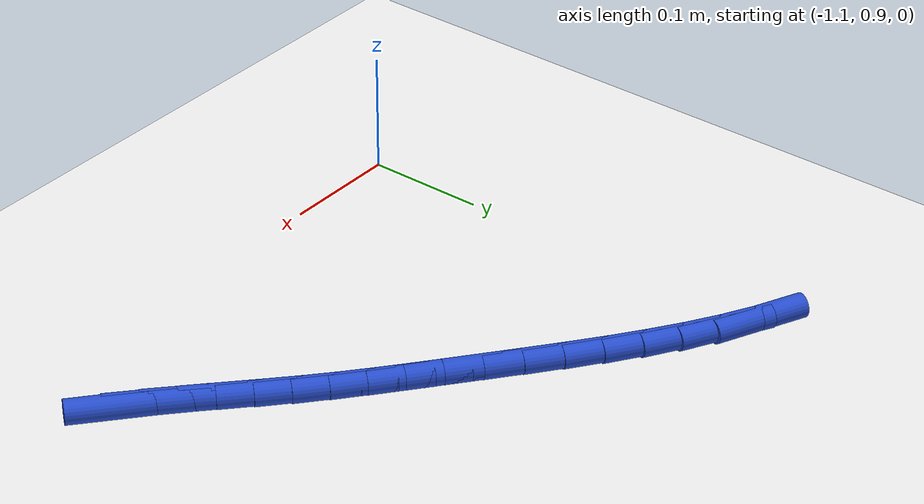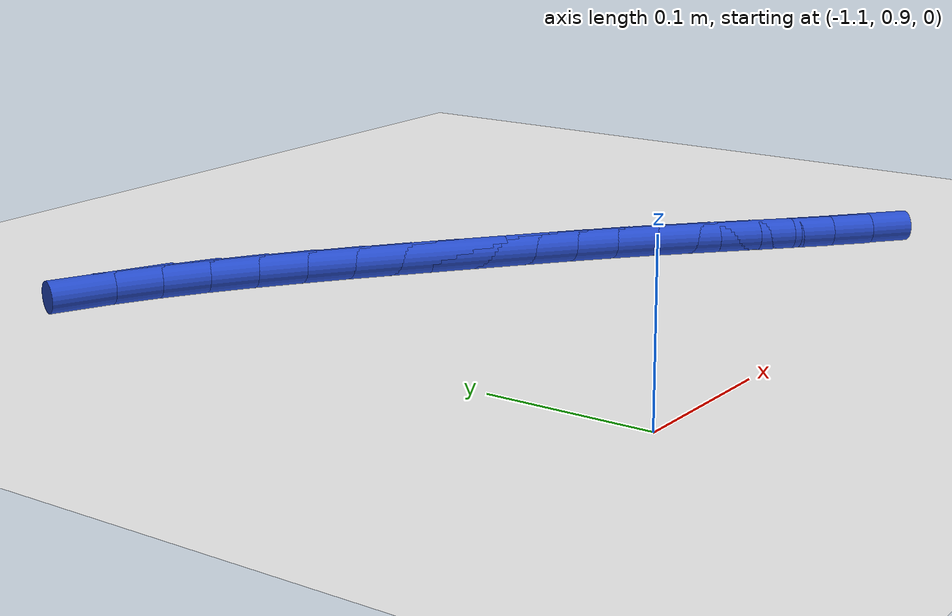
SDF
<sdf version="1.6">
 <world name="default">
  <model name="ground_plane">
   <static>1</static>
   <link name="link">
    <collision name="collision">
     <geometry><plane><normal>0 0 1</normal><size>100 100</size></plane></geometry>
     <surface><friction><ode><mu>100</mu><mu2>50</mu2></ode></friction></surface>
    </collision>
    <visual name="visual">
     <cast_shadows>0</cast_shadows>
     <geometry><plane><normal>0 0 1</normal><size>100 100</size></plane></geometry>
     <material>
      <script><uri>file://media/materials/scripts/gazebo.material</uri><name>Gazebo/WhiteGlow</name></script>
     </material>
    </visual>
   </link>
  </model>
  <model name="line">
   <link name="link_49">
    <pose>-0.7037777243364307 0.9789862609495829 0.01 0 1.57 -0.69913191488999</pose>
    <collision name="collision">
     <geometry><cylinder><radius>0.01</radius><length>0.08</length></cylinder></geometry>
    </collision>
    <visual name="visual">
     <material>
      <script><name>Gazebo/Blue</name><uri>file://media/materials/scripts/gazebo.material</uri></script>
     </material>
     <geometry><cylinder><radius>0.01</radius><length>0.08</length></cylinder></geometry>
    </visual>
   </link>
   <link name="link_50">
    <pose>-0.7253460279178282 0.997121009582012 0.01 0 1.57 -0.7305670219041283</pose>
    <collision name="collision">
     <geometry><cylinder><radius>0.01</radius><length>0.08</length></cylinder></geometry>
    </collision>
    <visual name="visual">
     <material>
      <script><name>Gazebo/Blue</name><uri>file://media/materials/scripts/gazebo.material</uri></script>
     </material>
     <geometry><cylinder><radius>0.01</radius><length>0.08</length></cylinder></geometry>
    </visual>
   </link>
   <link name="link_51">
    <pose>-0.7462241762732335 1.0158265607977124 0.01 0 1.57 -0.7481504263059927</pose>
    <collision name="collision">
     <geometry><cylinder><radius>0.01</radius><length>0.08</length></cylinder></geometry>
    </collision>
    <visual name="visual">
     <material>
      <script><name>Gazebo/Blue</name><uri>file://media/materials/scripts/gazebo.material</uri></script>
     </material>
     <geometry><cylinder><radius>0.01</radius><length>0.08</length></cylinder></geometry>
    </visual>
   </link>
   <link name="link_52">
    <pose>-0.7667028852411639 1.0348338260263228 0.01 0 1.57 -0.7516606794067981</pose>
    <collision name="collision">
     <geometry><cylinder><radius>0.01</radius><length>0.08</length></cylinder></geometry>
    </collision>
    <visual name="visual">
     <material>
      <script><name>Gazebo/Blue</name><uri>file://media/materials/scripts/gazebo.material</uri></script>
     </material>
     <geometry><cylinder><radius>0.01</radius><length>0.08</length></cylinder></geometry>
    </visual>
   </link>
   <link name="link_53">
    <pose>-0.7870728706601353 1.0538737166974819 0.01 0 1.57 -0.7409976301524455</pose>
    <collision name="collision">
     <geometry><cylinder><radius>0.01</radius><length>0.08</length></cylinder></geometry>
    </collision>
    <visual name="visual">
     <material>
      <script><name>Gazebo/Blue</name><uri>file://media/materials/scripts/gazebo.material</uri></script>
     </material>
     <geometry><cylinder><radius>0.01</radius><length>0.08</length></cylinder></geometry>
    </visual>
   </link>
   <link name="link_54">
    <pose>-0.8076248483686651 1.0726771442408285 0.01 0 1.57 -0.7172671707336774</pose>
    <collision name="collision">
     <geometry><cylinder><radius>0.01</radius><length>0.08</length></cylinder></geometry>
    </collision>
    <visual name="visual">
     <material>
      <script><name>Gazebo/Blue</name><uri>file://media/materials/scripts/gazebo.material</uri></script>
     </material>
     <geometry><cylinder><radius>0.01</radius><length>0.08</length></cylinder></geometry>
    </visual>
   </link>
   <link name="link_55">
    <pose>-0.8286344472180314 1.0910026491040457 0.01 0 1.57 -0.6928272018302386</pose>
    <collision name="collision">
     <geometry><cylinder><radius>0.01</radius><length>0.08</length></cylinder></geometry>
    </collision>
    <visual name="visual">
     <material>
      <script><name>Gazebo/Blue</name><uri>file://media/materials/scripts/gazebo.material</uri></script>
     </material>
     <geometry><cylinder><radius>0.01</radius><length>0.08</length></cylinder></geometry>
    </visual>
   </link>
   <link name="link_56">
    <pose>-0.8502109852501272 1.1089133391266282 0.01 0 1.57 -0.6755151028071706</pose>
    <collision name="collision">
     <geometry><cylinder><radius>0.01</radius><length>0.08</length></cylinder></geometry>
    </collision>
    <visual name="visual">
     <material>
      <script><name>Gazebo/Blue</name><uri>file://media/materials/scripts/gazebo.material</uri></script>
     </material>
     <geometry><cylinder><radius>0.01</radius><length>0.08</length></cylinder></geometry>
    </visual>
   </link>
   <link name="link_57">
    <pose>-0.8723606410530319 1.126661202922312 0.01 0 1.57 -0.6654956386654387</pose>
    <collision name="collision">
     <geometry><cylinder><radius>0.01</radius><length>0.08</length></cylinder></geometry>
    </collision>
    <visual name="visual">
     <material>
      <script><name>Gazebo/Blue</name><uri>file://media/materials/scripts/gazebo.material</uri></script>
     </material>
     <geometry><cylinder><radius>0.01</radius><length>0.08</length></cylinder></geometry>
    </visual>
   </link>
   <link name="link_58">
    <pose>-0.8950880517293283 1.1445010520495262 0.01 0 1.57 -0.662536947512708</pose>
    <collision name="collision">
     <geometry><cylinder><radius>0.01</radius><length>0.08</length></cylinder></geometry>
    </collision>
    <visual name="visual">
     <material>
      <script><name>Gazebo/Blue</name><uri>file://media/materials/scripts/gazebo.material</uri></script>
     </material>
     <geometry><cylinder><radius>0.01</radius><length>0.08</length></cylinder></geometry>
    </visual>
   </link>
   <link name="link_59">
    <pose>-0.9183977564601404 1.1626867706511839 0.01 0 1.57 -0.6619359870756996</pose>
    <collision name="collision">
     <geometry><cylinder><radius>0.01</radius><length>0.08</length></cylinder></geometry>
    </collision>
    <visual name="visual">
     <material>
      <script><name>Gazebo/Blue</name><uri>file://media/materials/scripts/gazebo.material</uri></script>
     </material>
     <geometry><cylinder><radius>0.01</radius><length>0.08</length></cylinder></geometry>
    </visual>
   </link>
   <link name="link_60">
    <pose>-0.9422753098212421 1.1812924394071784 0.01 0 1.57 -0.6542872192048848</pose>
    <collision name="collision">
     <geometry><cylinder><radius>0.01</radius><length>0.08</length></cylinder></geometry>
    </collision>
    <visual name="visual">
     <material>
      <script><name>Gazebo/Blue</name><uri>file://media/materials/scripts/gazebo.material</uri></script>
     </material>
     <geometry><cylinder><radius>0.01</radius><length>0.08</length></cylinder></geometry>
    </visual>
   </link>
   <link name="link_61">
    <pose>-0.9666647492893129 1.1999989299706912 0.01 0 1.57 -0.6384913722026878</pose>
    <collision name="collision">
     <geometry><cylinder><radius>0.01</radius><length>0.08</length></cylinder></geometry>
    </collision>
    <visual name="visual">
     <material>
      <script><name>Gazebo/Blue</name><uri>file://media/materials/scripts/gazebo.material</uri></script>
     </material>
     <geometry><cylinder><radius>0.01</radius><length>0.08</length></cylinder></geometry>
    </visual>
   </link>
   <link name="link_62">
    <pose>-0.9915046227353794 1.2184351218629248 0.01 0 1.57 -0.6142969545149345</pose>
    <collision name="collision">
     <geometry><cylinder><radius>0.01</radius><length>0.08</length></cylinder></geometry>
    </collision>
    <visual name="visual">
     <material>
      <script><name>Gazebo/Blue</name><uri>file://media/materials/scripts/gazebo.material</uri></script>
     </material>
     <geometry><cylinder><radius>0.01</radius><length>0.08</length></cylinder></geometry>
    </visual>
   </link>
   <link name="link_63">
    <pose>-1.016733478030469 1.2362298946050845 0.01 0 1.57 -0.5810531960142062</pose>
    <collision name="collision">
     <geometry><cylinder><radius>0.01</radius><length>0.08</length></cylinder></geometry>
    </collision>
    <visual name="visual">
     <material>
      <script><name>Gazebo/Blue</name><uri>file://media/materials/scripts/gazebo.material</uri></script>
     </material>
     <geometry><cylinder><radius>0.01</radius><length>0.08</length></cylinder></geometry>
    </visual>
   </link>
   <link name="link_64">
    <pose>-1.0422898630456086 1.253012127718374 0.01 0 1.57 -0.5377127125319096</pose>
    <collision name="collision">
     <geometry><cylinder><radius>0.01</radius><length>0.08</length></cylinder></geometry>
    </collision>
    <visual name="visual">
     <material>
      <script><name>Gazebo/Blue</name><uri>file://media/materials/scripts/gazebo.material</uri></script>
     </material>
     <geometry><cylinder><radius>0.01</radius><length>0.08</length></cylinder></geometry>
    </visual>
   </link>
   <link name="link_65">
    <pose>-1.068112325651825 1.2684107007239969 0.01 0 1.57 -0.48283149191226143</pose>
    <collision name="collision">
     <geometry><cylinder><radius>0.01</radius><length>0.08</length></cylinder></geometry>
    </collision>
    <visual name="visual">
     <material>
      <script><name>Gazebo/Blue</name><uri>file://media/materials/scripts/gazebo.material</uri></script>
     </material>
     <geometry><cylinder><radius>0.01</radius><length>0.08</length></cylinder></geometry>
    </visual>
   </link>
   <link name="link_66">
    <pose>-1.0941394137201457 1.2820544931431583 0.01 0 1.57 -0.4146021535567745</pose>
    <collision name="collision">
     <geometry><cylinder><radius>0.01</radius><length>0.08</length></cylinder></geometry>
    </collision>
    <visual name="visual">
     <material>
      <script><name>Gazebo/Blue</name><uri>file://media/materials/scripts/gazebo.material</uri></script>
     </material>
     <geometry><cylinder><radius>0.01</radius><length>0.08</length></cylinder></geometry>
    </visual>
   </link>
  </model>
 </world>
</sdf>
